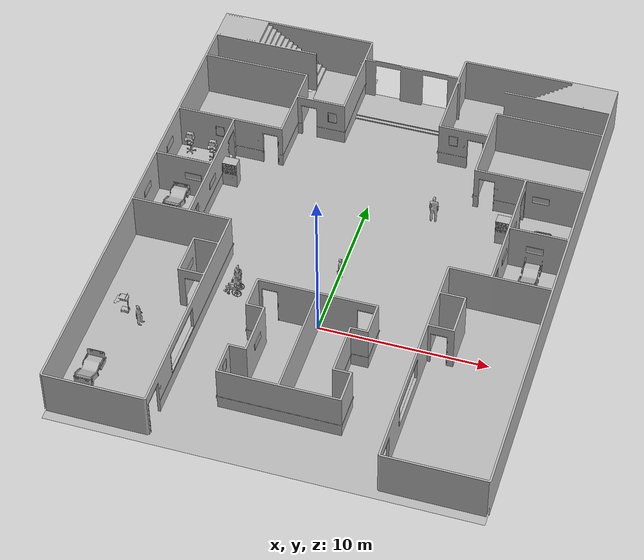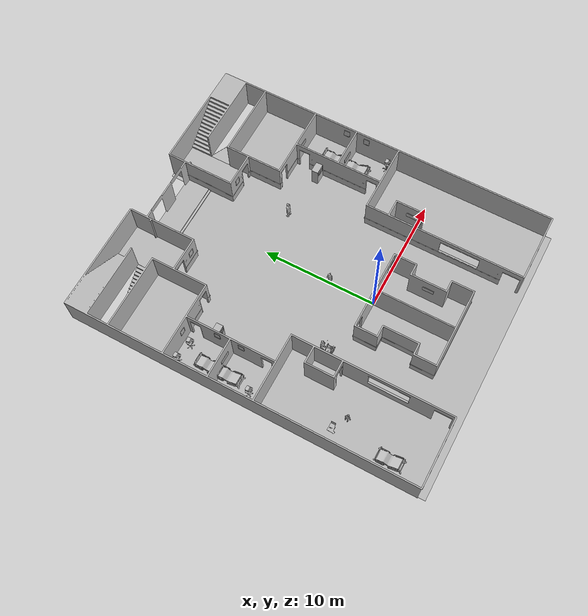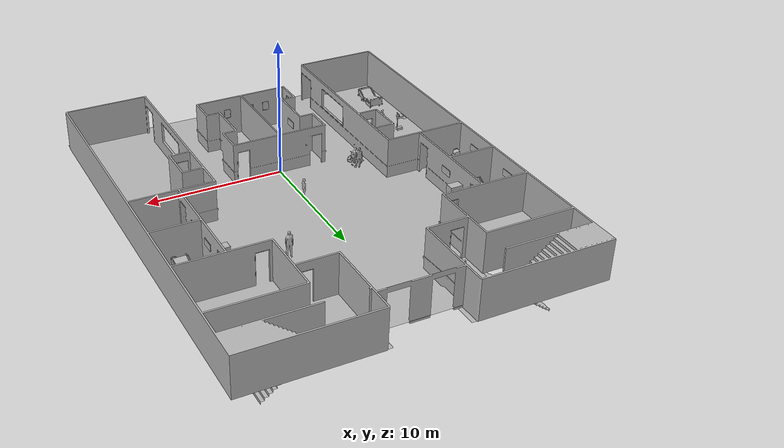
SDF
<sdf version="1.6">
 <world name="default">
  <plugin name="gz::sim::systems::Physics" filename="gz-sim-physics-system"/>
  <plugin filename="gz-sim-user-commands-system" name="gz::sim::systems::UserCommands"/>
  <plugin name="gz::sim::systems::SceneBroadcaster" filename="gz-sim-scene-broadcaster-system"/>
  <plugin filename="gz-sim-sensors-system" name="gz::sim::systems::Sensors">
   <render_engine>ogre2</render_engine>
  </plugin>
  <gravity>0 0 -9.8</gravity>
  <atmosphere type="adiabatic"/>
  <scene>
   <ambient>0.6 0.6 0.6 1</ambient>
   <background>0.4 0.4 0.4 1</background>
   <shadows>false</shadows>
   <grid>false</grid>
  </scene>
  <physics default="0" name="default_physics" type="ode">
   <ode>
    <solver>
     <type>quick</type>
     <iters>10</iters>
     <sor>1.3</sor>
     <use_dynamic_moi_rescaling>0</use_dynamic_moi_rescaling>
    </solver>
    <constraints>
     <cfm>0</cfm>
     <erp>0.2</erp>
     <contact_max_correcting_vel>100</contact_max_correcting_vel>
     <contact_surface_layer>0.001</contact_surface_layer>
    </constraints>
   </ode>
   <max_step_size>0.004</max_step_size>
   <real_time_factor>1</real_time_factor>
   <real_time_update_rate>250</real_time_update_rate>
  </physics>
  <light name="sun" type="directional">
   <pose>0 0 10 0 0 0</pose>
   <diffuse>0.8 0.8 0.8 1</diffuse>
   <specular>0.2 0.2 0.2 1</specular>
   <direction>-0.5 0.1 -0.9</direction>
  </light>
  <include>
   <name>floor</name>
   <uri>model://aws_robomaker_hospital_floor_03_floor</uri>
   <static>true</static>
   <pose>-0.001425 -0.014447 0 -1.57 -0 0</pose>
  </include>
  <include>
   <name>walls</name>
   <uri>model://aws_robomaker_hospital_floor_03_walls</uri>
   <static>true</static>
   <pose>-0.013823 -0.013783 0 -1.57 -0 0</pose>
  </include>
  <include>
   <name>Scrubs2</name>
   <uri>model://Scrubs</uri>
   <static>true</static>
   <pose>0.054597 4.05849 0 0 -0 3.12413</pose>
  </include>
  <include>
   <name>PatientWheelChair1</name>
   <uri>model://PatientWheelChair</uri>
   <static>true</static>
   <pose>-5.46091 1.23577 0 0 0 -1.54828</pose>
  </include>
  <include>
   <name>Scrubs3</name>
   <uri>model://Scrubs</uri>
   <static>true</static>
   <pose>-5.38513 1.82526 0 0 0 -1.63757</pose>
  </include>
  <include>
   <name>PortraitA1</name>
   <uri>model://aws_robomaker_residential_PortraitA_01</uri>
   <static>true</static>
   <pose>1.14738 -6.92303 1.41115 0 -0 0</pose>
  </include>
  <include>
   <name>PortraitD1</name>
   <uri>model://aws_robomaker_residential_PortraitD_02</uri>
   <static>true</static>
   <pose>2.40772 -3.61975 1.54508 0 0 -1.57619</pose>
  </include>
  <include>
   <name>PortraitA2</name>
   <uri>model://aws_robomaker_residential_PortraitA_01</uri>
   <static>true</static>
   <pose>-0.706092 -6.93108 1.41115 0 -0 0</pose>
  </include>
  <include>
   <name>PortraitA3</name>
   <uri>model://aws_robomaker_residential_PortraitA_01</uri>
   <static>true</static>
   <pose>-1.97245 -6.9216 1.41115 0 -0 0</pose>
  </include>
  <include>
   <name>PortraitD2</name>
   <uri>model://aws_robomaker_residential_PortraitD_02</uri>
   <static>true</static>
   <pose>-2.43341 -3.38621 1.54508 0 -0 1.57083</pose>
  </include>
  <include>
   <name>CGMClassic4</name>
   <uri>model://CGMClassic</uri>
   <static>true</static>
   <pose>-11.0878 -7.00992 0 0 -0 3.1351</pose>
  </include>
  <include>
   <name>CGMClassic5</name>
   <uri>model://CGMClassic</uri>
   <static>true</static>
   <pose>-11.0106 8.9505 -0.008203 -0.035019 -0.000392 3.13388</pose>
  </include>
  <include>
   <name>CGMClassic6</name>
   <uri>model://CGMClassic</uri>
   <static>true</static>
   <pose>-11.025 7.10335 0 -0.035021 1.8e-05 -3.13762</pose>
  </include>
  <include>
   <name>PortraitD8</name>
   <uri>model://aws_robomaker_residential_PortraitD_02</uri>
   <static>true</static>
   <pose>7.88791 0.445446 1.54508 0 0 -1.57619</pose>
  </include>
  <include>
   <name>PortraitD9</name>
   <uri>model://aws_robomaker_residential_PortraitD_02</uri>
   <static>true</static>
   <pose>-7.92095 0.84255 1.54508 0 -0 1.57083</pose>
  </include>
  <include>
   <name>PortraitD11</name>
   <uri>model://aws_robomaker_residential_PortraitD_02</uri>
   <static>true</static>
   <pose>-12.3841 6.01232 1.54508 0 -0 1.57083</pose>
  </include>
  <include>
   <name>PortraitD12</name>
   <uri>model://aws_robomaker_residential_PortraitD_02</uri>
   <static>true</static>
   <pose>-12.4276 9.98828 1.54508 0 -0 1.57083</pose>
  </include>
  <include>
   <name>PortraitE3</name>
   <uri>model://aws_robomaker_residential_PortraitE_02</uri>
   <static>true</static>
   <pose>-9.08927 9.19494 1.84129 0 0 -1.5625</pose>
  </include>
  <include>
   <name>PortraitE4</name>
   <uri>model://aws_robomaker_residential_PortraitD_02</uri>
   <static>true</static>
   <pose>-8.94468 7.73571 1.54508 0 -0 1.57083</pose>
  </include>
  <include>
   <name>PortraitE5</name>
   <uri>model://aws_robomaker_residential_PortraitE_02</uri>
   <static>true</static>
   <pose>-9.08305 7.04089 1.84129 0 0 -1.5625</pose>
  </include>
  <include>
   <name>PortraitE6</name>
   <uri>model://aws_robomaker_residential_PortraitE_01</uri>
   <static>true</static>
   <pose>-9.9148 11.9172 1.40573 0 -0 0</pose>
  </include>
  <include>
   <name>PortraitD14</name>
   <uri>model://aws_robomaker_residential_PortraitD_01</uri>
   <static>true</static>
   <pose>-10.2134 7.89752 1.40573 0 -0 0</pose>
  </include>
  <include>
   <name>CGMClassic7</name>
   <uri>model://CGMClassic</uri>
   <static>true</static>
   <pose>10.6166 9.06291 -0.008203 -0.03501 0.000885 -3.11285</pose>
  </include>
  <include>
   <name>CGMClassic8</name>
   <uri>model://CGMClassic</uri>
   <static>true</static>
   <pose>10.6006 6.90956 -0.008203 -0.035003 0.001133 -3.10576</pose>
  </include>
  <include>
   <name>PortraitD15</name>
   <uri>model://aws_robomaker_residential_PortraitD_02</uri>
   <static>true</static>
   <pose>9.06517 6.78742 1.54508 0 -0 1.57083</pose>
  </include>
  <include>
   <name>PortraitD16</name>
   <uri>model://aws_robomaker_residential_PortraitD_02</uri>
   <static>true</static>
   <pose>9.06517 9.05858 1.54508 0 -0 1.57083</pose>
  </include>
  <include>
   <name>PortraitE7</name>
   <uri>model://aws_robomaker_residential_PortraitE_02</uri>
   <static>true</static>
   <pose>12.3972 6.98849 1.84129 0 0 -1.5625</pose>
  </include>
  <include>
   <name>PortraitE8</name>
   <uri>model://aws_robomaker_residential_PortraitE_02</uri>
   <static>true</static>
   <pose>12.3972 8.87466 1.84129 0 0 -1.5625</pose>
  </include>
  <include>
   <name>PortraitE9</name>
   <uri>model://aws_robomaker_residential_PortraitE_02</uri>
   <static>true</static>
   <pose>-3.4385 -6.00525 1.84129 0 -0 1.56777</pose>
  </include>
  <include>
   <name>PortraitD17</name>
   <uri>model://aws_robomaker_residential_PortraitD_01</uri>
   <static>true</static>
   <pose>10.596 7.88308 1.40573 0 -0 0</pose>
  </include>
  <include>
   <name>PortraitD18</name>
   <uri>model://aws_robomaker_residential_PortraitD_01</uri>
   <static>true</static>
   <pose>9.98896 11.914 1.40573 0 -0 0</pose>
  </include>
  <include>
   <name>PortraitE10</name>
   <uri>model://aws_robomaker_residential_PortraitE_02</uri>
   <static>true</static>
   <pose>-3.74211 14.8725 1.54379 0 -0 0</pose>
  </include>
  <include>
   <name>PortraitE11</name>
   <uri>model://aws_robomaker_residential_PortraitE_01</uri>
   <static>true</static>
   <pose>3.85701 14.8779 1.69742 0 -0 0</pose>
  </include>
  <include>
   <name>BMWCart</name>
   <uri>model://BMWCart</uri>
   <static>true</static>
   <pose>-10.931 -1.9483 0 0 -0 0</pose>
  </include>
  <include>
   <name>Scrubs7</name>
   <uri>model://Scrubs</uri>
   <static>true</static>
   <pose>-9.75875 -2.67552 0 0 -0 0</pose>
  </include>
  <include>
   <name>BPCart1</name>
   <uri>model://BPCart</uri>
   <static>true</static>
   <pose>-10.1788 11.173 0.003446 1e-06 -0 0.003096</pose>
  </include>
  <include>
   <name>BPCart2</name>
   <uri>model://BPCart</uri>
   <static>true</static>
   <pose>12.0072 4.64765 0 0 -0 0</pose>
  </include>
  <include>
   <name>BPCart3</name>
   <uri>model://BPCart</uri>
   <static>true</static>
   <pose>-11.7236 11.4294 0 0 -0 0</pose>
  </include>
  <include>
   <name>BPCart4</name>
   <uri>model://BPCart</uri>
   <static>true</static>
   <pose>-11.4703 5.05999 0.003446 1e-06 -0 0.003096</pose>
  </include>
  <include>
   <name>VendingMachine1</name>
   <uri>model://VendingMachine</uri>
   <static>true</static>
   <pose>-8.45694 9.63064 0 0 -0 0</pose>
  </include>
  <include>
   <name>VendingMachine2</name>
   <uri>model://VendingMachine</uri>
   <static>true</static>
   <pose>8.35378 9.64852 -3e-06 -6e-06 0 0</pose>
  </include>
  <include>
   <name>person2follow</name>
   <uri>model://PersonToFollow_harmonic</uri>
   <pose>4 10 0 0 0 3.14</pose>
  </include>
 </world>
</sdf>

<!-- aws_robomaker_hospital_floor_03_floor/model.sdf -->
<sdf version="1.6">
  <model name="aws_robomaker_hospital_floor_03_floor">
    <link name="link">
      <visual name="visual">
	      <geometry>
          <mesh>
            <uri>model://aws_robomaker_hospital_floor_03_floor/meshes/aws_robomaker_hospital_floor_03_floor_visual.dae</uri>
          </mesh>
        </geometry>
      </visual>
      <collision name="collision">
        <pose>0 0 0 1.57 0 0</pose>
        <geometry>
          <box>
            <size>25 40 0.01</size>
          </box>
        </geometry>
        <surface>
          <friction>
            <ode>
              <mu>100</mu>
              <mu2>50</mu2>
            </ode>
          </friction>
        </surface>
      </collision>
</link>
  <static>1</static>
  </model>
</sdf>

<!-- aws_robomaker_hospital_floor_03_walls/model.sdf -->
<sdf version="1.6">
  <model name="aws_robomaker_hospital_floor_03_walls">
    <link name="link">
      <visual name="visual">
	    <geometry>
          <mesh>
            <uri>model://aws_robomaker_hospital_floor_03_walls/meshes/aws_robomaker_hospital_floor_03_walls_visual.dae</uri>
          </mesh>
        </geometry>
      </visual>
      <collision name="collision">
        <geometry>
          <mesh>
            <uri>model://aws_robomaker_hospital_floor_03_walls/meshes/aws_robomaker_hospital_floor_03_walls_visual.dae</uri>
          </mesh>
        </geometry>
      </collision>
</link>
  <static>1</static>
  </model>
</sdf>

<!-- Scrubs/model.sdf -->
<sdf version="1.6">
  <model name='Scrubs'>
   <static>true</static>
    <link name="body">
      <pose>0 0 0 0 0 0</pose>

      <visual name="visual">
        <geometry>
          <mesh>
            <uri>model://Scrubs/meshes/scrubs.obj</uri>
          </mesh>
        </geometry>
      </visual>

      <collision name="collision">
        <geometry>
          <mesh>
            <uri>model://Scrubs/meshes/Scrubs_Col.obj</uri>
          </mesh>
        </geometry>
      </collision>

    </link>
  </model>
</sdf>

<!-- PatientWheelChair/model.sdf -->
<sdf version="1.6">
  <model name="PatientWheelChair">
   <static>true</static>
    <link name="body">
      <pose>0 0 0 0 0 0</pose>

      <visual name="visual">
        <geometry>
          <mesh>
            <uri>model://PatientWheelChair/meshes/PatientWheelChair.obj</uri>
          </mesh>
        </geometry>
      </visual>

      <collision name="collision">
        <geometry>
          <mesh>
            <uri>model://PatientWheelChair/meshes/PatientWheelChair_Col.obj</uri>
          </mesh>
        </geometry>
      </collision>

    </link>
  </model>
</sdf>

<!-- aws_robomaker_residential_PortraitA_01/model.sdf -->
<sdf version="1.6">
  <model name="aws_robomaker_residential_PortraitA_01">
    <link name="link">
      <inertial>
        <mass>1</mass>
      </inertial>
      <collision name="collision">
        <geometry>
          <mesh>
            <uri>model://models/aws_robomaker_residential_PortraitA_01/meshes/aws_PortraitA_01_collision.DAE</uri>
            <scale>1 1 1</scale>
          </mesh>
        </geometry>
      </collision>
      <visual name="visual">
	    <geometry>
          <mesh>
            <uri>model://models/aws_robomaker_residential_PortraitA_01/meshes/aws_PortraitA_01_visual.DAE</uri>
          </mesh>
        </geometry>
      <meta> <layer> 2 </layer></meta>
</visual>
    </link>
	<static>1</static>
  </model>
</sdf>

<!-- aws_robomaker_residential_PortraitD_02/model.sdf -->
<sdf version="1.6">
  <model name="aws_robomaker_residential_PortraitD_02">
    <link name="link">

      <inertial>
        <mass>1.5</mass>
      </inertial>

      <collision name="collision">
        <geometry>
          <mesh>
            <uri>model://models/aws_robomaker_residential_PortraitD_02/meshes/aws_PortraitD_01_collision.DAE</uri>
            <scale>1 1 1</scale>
          </mesh>
        </geometry>

      </collision>

      <visual name="visual">
	    <geometry>
          <mesh>
            <uri>model://models/aws_robomaker_residential_PortraitD_02/meshes/aws_PortraitD_01_visual.DAE</uri>
          </mesh>
        </geometry>
      <meta> <layer> 2 </layer></meta>
</visual>
    </link>
	<static>1</static>
  </model>
</sdf>

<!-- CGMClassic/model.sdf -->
<sdf version="1.6">
  <model name="CGMClassic">
   <static>true</static>
    <link name="body">
      <pose>0 0 0 0 0 0</pose>

      <visual name="visual">
        <geometry>
          <mesh>
            <uri>model://CGMClassic/meshes/CGMClassic.obj</uri>
            <scale>0.01 0.01 0.01</scale>
          </mesh>
        </geometry>
      </visual>

      <collision name="collision">
        <geometry>
          <mesh>
            <uri>model://CGMClassic/meshes/CGMClassic.obj</uri>
            <scale>0.01 0.01 0.01</scale>
          </mesh>
        </geometry>
      </collision>

    </link>
  </model>
</sdf>

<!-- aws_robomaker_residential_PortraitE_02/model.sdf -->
<sdf version="1.6">
  <model name="aws_robomaker_residential_PortraitE_02">
    <link name="link">
      <inertial>
        <mass>1</mass>
      </inertial>
      <collision name="collision">
        <geometry>
          <mesh>
            <uri>model://models/aws_robomaker_residential_PortraitE_02/meshes/aws_PortraitE_01_collision.DAE</uri>
            <scale>1 1 1</scale>
          </mesh>
        </geometry>
      </collision>
      <visual name="visual">
	    <geometry>
          <mesh>
            <uri>model://models/aws_robomaker_residential_PortraitE_02/meshes/aws_PortraitE_01_visual.DAE</uri>
          </mesh>
        </geometry>
      <meta> <layer> 2 </layer></meta>
</visual>
    </link>
	<static>1</static>
  </model>
</sdf>

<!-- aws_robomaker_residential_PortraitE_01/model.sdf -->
<sdf version="1.6">
  <model name="aws_robomaker_residential_PortraitE_01">
    <link name="link">
      <inertial>
        <mass>1</mass>
      </inertial>
      <collision name="collision">
        <geometry>
          <mesh>
            <uri>model://models/aws_robomaker_residential_PortraitE_01/meshes/aws_PortraitE_01_collision.DAE</uri>
            <scale>1 1 1</scale>
          </mesh>
        </geometry>
      </collision>
      <visual name="visual">
	    <geometry>
          <mesh>
            <uri>model://models/aws_robomaker_residential_PortraitE_01/meshes/aws_PortraitE_01_visual.DAE</uri>
          </mesh>
        </geometry>
      <meta> <layer> 2 </layer></meta>
</visual>
    </link>
	<static>1</static>
  </model>
</sdf>

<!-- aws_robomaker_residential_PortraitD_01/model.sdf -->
<sdf version="1.6">
  <model name="aws_robomaker_residential_PortraitD_01">
    <link name="link">

      <inertial>
        <mass>1.5</mass>
      </inertial>

      <collision name="collision">
        <geometry>
          <mesh>
            <uri>model://models/aws_robomaker_residential_PortraitD_01/meshes/aws_PortraitD_01_collision.DAE</uri>
            <scale>1 1 1</scale>
          </mesh>
        </geometry>

      </collision>

      <visual name="visual">
	    <geometry>
          <mesh>
            <uri>model://models/aws_robomaker_residential_PortraitD_01/meshes/aws_PortraitD_01_visual.DAE</uri>
          </mesh>
        </geometry>
      <meta> <layer> 2 </layer></meta>
</visual>
    </link>
	<static>1</static>
  </model>
</sdf>

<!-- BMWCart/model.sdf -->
<sdf version="1.6">
  <model name='BMWCart'>
    <link name="body">
      <pose>0 0 0 0 0 0</pose>

      <visual name="visual">
        <geometry>
          <mesh>
            <uri>model://BMWCart/meshes/Cart_BMW.obj</uri>
          </mesh>
        </geometry>
      </visual>

      <collision name="collision">
        <geometry>
          <mesh>
            <uri>model://BMWCart/meshes/Cart_BMW_Col.obj</uri>
          </mesh>
        </geometry>
      </collision>

    </link>
  </model>
</sdf>

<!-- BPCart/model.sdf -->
<sdf version="1.6">
  <model name='BPCart'>
    <link name="body">
      <pose>0 0 0 0 0 0</pose>

      <visual name="visual">
        <geometry>
          <mesh>
            <uri>model://BPCart/meshes/Cart_BP.obj</uri>
          </mesh>
        </geometry>
      </visual>

      <collision name="collision">
        <geometry>
          <mesh>
            <uri>model://BPCart/meshes/Cart_BP_Col.obj</uri>
          </mesh>
        </geometry>
      </collision>

    </link>
  </model>
</sdf>

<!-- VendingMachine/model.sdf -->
<sdf version="1.6">
  <model name="VendingMachine">
    <link name="body">
      <pose>0 0 0 0 0 0</pose>

      <visual name="visual">
        <geometry>
          <mesh>
            <uri>model://VendingMachine/meshes/vend.obj</uri>
          </mesh>
        </geometry>
      </visual>

      <collision name="collision">
        <geometry>
          <mesh>
            <uri>model://VendingMachine/meshes/vend.obj</uri>
          </mesh>
        </geometry>
      </collision>

    </link>
  </model>
</sdf>

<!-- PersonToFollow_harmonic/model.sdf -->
<sdf version="1.6">
  <model name="PersonToFollow_harmonic">
    <link name="link">
      <inertial>
        <pose>0 -0.1 0.95 0 0 0</pose>
        <mass>80.0</mass>
        <inertia>
          <ixx>24.88</ixx>
          <ixy>0</ixy>
          <ixz>0</ixz>
          <iyy>25.73</iyy>
          <iyz>0</iyz>
          <izz>2.48</izz>
        </inertia>
      </inertial>

      <collision name="person_bottom">
        <pose>0 -0.1 0.01 0 0 0</pose>
        <geometry>
          <box>
            <size>0.5 0.35 0.02</size>
          </box>
        </geometry>
      </collision>

      <collision name="person_collision">
        <pose>0 0 0.02 0.04 0 0</pose>
        <geometry>
          <mesh>
            <uri>model://PersonToControl_harmonic/meshes/standing.dae</uri>
          </mesh>
        </geometry>
      </collision>

      <visual name="person_visual">
        <pose>0 0 0.02 0.04 0 0</pose>
        <geometry>
          <mesh>
            <uri>model://PersonToControl_harmonic/meshes/standing.dae</uri>
          </mesh>
        </geometry>
      </visual>
    </link>

    <plugin name="person_plugin::Person" filename="libpersonplugin_harmonic.so">
      <auto_movement>true</auto_movement>
    </plugin>

    <static>false</static>

  </model>
</sdf>
